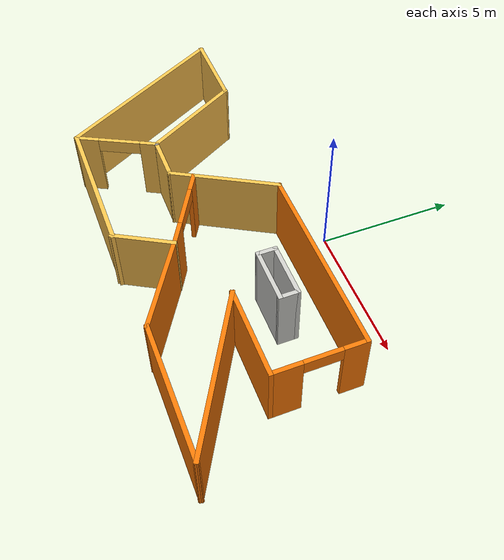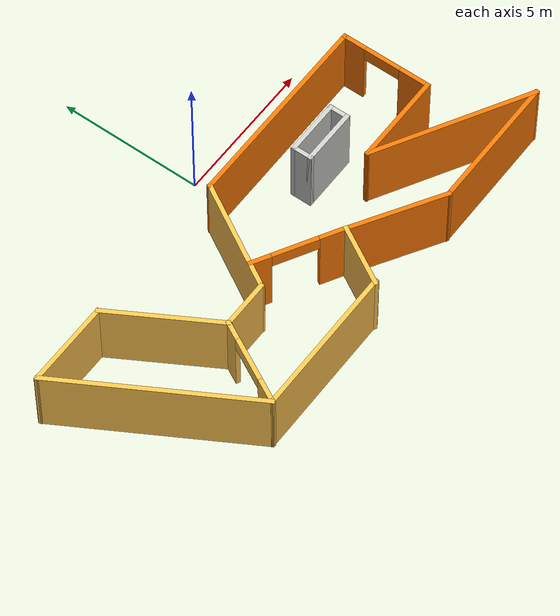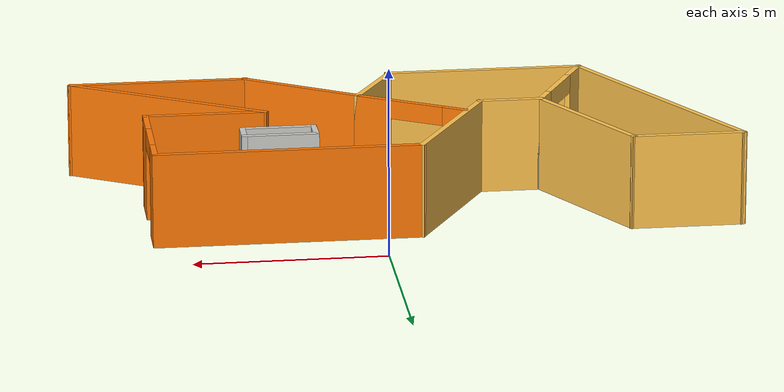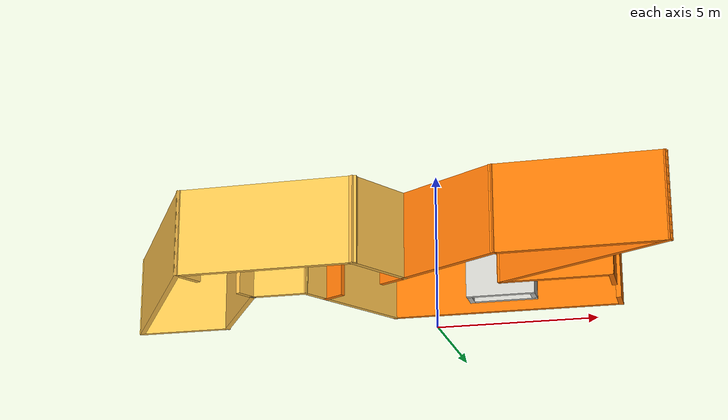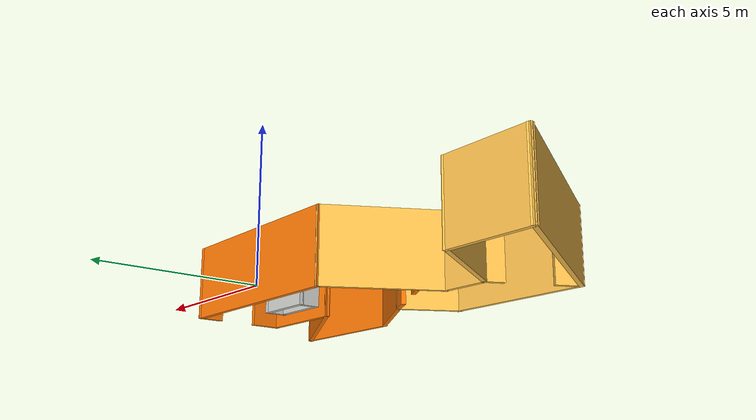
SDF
<?xml version='1.0'?>
<sdf version='1.7'>
  <model name='model'>
    <pose>-0.880063 -3.74089 0 0 -0 0</pose>
    <link name='Wall_1'>
      <collision name='Wall_1_Collision'>
        <geometry>
          <box>
            <size>3 0.15 2.5</size>
          </box>
        </geometry>
        <pose>0 0 1.25 0 -0 0</pose>
      </collision>
      <visual name='Wall_1_Visual'>
        <pose>0 0 1.25 0 -0 0</pose>
        <geometry>
          <box>
            <size>3 0.15 2.5</size>
          </box>
        </geometry>
        <material>
          <script>
            <uri>file://media/materials/scripts/gazebo.material</uri>
            <name>Gazebo/Grey</name>
          </script>
          <ambient>1 0.764706 0.305882 1</ambient>
        </material>
        <meta>
          <layer>0</layer>
        </meta>
      </visual>
      <pose>-7.02494 2.33089 0 0 -0 0</pose>
    </link>
    <link name='Wall_10'>
      <collision name='Wall_10_Collision'>
        <geometry>
          <box>
            <size>3.45374 0.15 2.5</size>
          </box>
        </geometry>
        <pose>0 0 1.25 0 -0 0</pose>
      </collision>
      <visual name='Wall_10_Visual'>
        <pose>0 0 1.25 0 -0 0</pose>
        <geometry>
          <box>
            <size>3.45374 0.15 2.5</size>
          </box>
        </geometry>
        <material>
          <script>
            <uri>file://media/materials/scripts/gazebo.material</uri>
            <name>Gazebo/Grey</name>
          </script>
          <ambient>0.996078 0.47451 0.0196078 1</ambient>
        </material>
        <meta>
          <layer>0</layer>
        </meta>
      </visual>
      <pose>2.44495 -2.70017 0 0 -0 2.58766</pose>
    </link>
    <link name='Wall_11'>
      <collision name='Wall_11_Collision'>
        <geometry>
          <box>
            <size>2.25 0.15 2.5</size>
          </box>
        </geometry>
        <pose>0 0 1.25 0 -0 0</pose>
      </collision>
      <visual name='Wall_11_Visual'>
        <pose>0 0 1.25 0 -0 0</pose>
        <geometry>
          <box>
            <size>2.25 0.15 2.5</size>
          </box>
        </geometry>
        <material>
          <script>
            <uri>file://media/materials/scripts/gazebo.material</uri>
            <name>Gazebo/Grey</name>
          </script>
          <ambient>1 0.764706 0.305882 1</ambient>
        </material>
        <meta>
          <layer>0</layer>
        </meta>
      </visual>
      <pose>0.5151 -2.72911 0 0 -0 -2.0944</pose>
    </link>
    <link name='Wall_2'>
      <collision name='Wall_2_Collision'>
        <geometry>
          <box>
            <size>4 0.15 2.5</size>
          </box>
        </geometry>
        <pose>0 0 1.25 0 -0 0</pose>
      </collision>
      <visual name='Wall_2_Visual'>
        <pose>0 0 1.25 0 -0 0</pose>
        <geometry>
          <box>
            <size>4 0.15 2.5</size>
          </box>
        </geometry>
        <material>
          <script>
            <uri>file://media/materials/scripts/gazebo.material</uri>
            <name>Gazebo/Grey</name>
          </script>
          <ambient>1 0.764706 0.305882 1</ambient>
        </material>
        <meta>
          <layer>0</layer>
        </meta>
      </visual>
      <pose>-4.63744 0.66379 0 0 -0 -1.0472</pose>
    </link>
    <link name='Wall_20'>
      <collision name='Wall_20_Collision'>
        <geometry>
          <box>
            <size>6.98788 0.15 2.5</size>
          </box>
        </geometry>
        <pose>0 0 1.25 0 -0 0</pose>
      </collision>
      <visual name='Wall_20_Visual'>
        <pose>0 0 1.25 0 -0 0</pose>
        <geometry>
          <box>
            <size>6.98788 0.15 2.5</size>
          </box>
        </geometry>
        <material>
          <script>
            <uri>file://media/materials/scripts/gazebo.material</uri>
            <name>Gazebo/Grey</name>
          </script>
          <ambient>1 0.764706 0.305882 1</ambient>
        </material>
        <meta>
          <layer>0</layer>
        </meta>
      </visual>
      <pose>-6.75459 -0.638107 0 0 -0 -1.05196</pose>
    </link>
    <link name='Wall_21'>
      <collision name='Wall_21_Collision'>
        <geometry>
          <box>
            <size>5.25 0.15 2.5</size>
          </box>
        </geometry>
        <pose>0 0 1.25 0 -0 0</pose>
      </collision>
      <visual name='Wall_21_Visual'>
        <pose>0 0 1.25 0 -0 0</pose>
        <geometry>
          <box>
            <size>5.25 0.15 2.5</size>
          </box>
        </geometry>
        <material>
          <script>
            <uri>file://media/materials/scripts/gazebo.material</uri>
            <name>Gazebo/Grey</name>
          </script>
          <ambient>1 0.764706 0.305882 1</ambient>
        </material>
        <meta>
          <layer>0</layer>
        </meta>
      </visual>
      <pose>-2.49781 -3.6071 0 0 -0 0</pose>
    </link>
    <link name='Wall_23'>
      <collision name='Wall_23_Collision'>
        <geometry>
          <box>
            <size>2 0.15 2.5</size>
          </box>
        </geometry>
        <pose>0 0 1.25 0 -0 0</pose>
      </collision>
      <visual name='Wall_23_Visual'>
        <pose>0 0 1.25 0 -0 0</pose>
        <geometry>
          <box>
            <size>2 0.15 2.5</size>
          </box>
        </geometry>
        <material>
          <script>
            <uri>file://media/materials/scripts/gazebo.material</uri>
            <name>Gazebo/CeilingTiled</name>
          </script>
          <ambient>0.435294 0.796078 0.67451 1</ambient>
        </material>
        <meta>
          <layer>0</layer>
        </meta>
      </visual>
      <pose>3.37989 1.12451 0 0 -0 3.14159</pose>
    </link>
    <link name='Wall_24'>
      <collision name='Wall_24_Collision'>
        <geometry>
          <box>
            <size>0.75 0.15 2.5</size>
          </box>
        </geometry>
        <pose>0 0 1.25 0 -0 0</pose>
      </collision>
      <visual name='Wall_24_Visual'>
        <pose>0 0 1.25 0 -0 0</pose>
        <geometry>
          <box>
            <size>0.75 0.15 2.5</size>
          </box>
        </geometry>
        <material>
          <script>
            <uri>file://media/materials/scripts/gazebo.material</uri>
            <name>Gazebo/CeilingTiled</name>
          </script>
          <ambient>0.435294 0.796078 0.67451 1</ambient>
        </material>
        <meta>
          <layer>0</layer>
        </meta>
      </visual>
      <pose>2.45489 0.824511 0 0 -0 -1.5708</pose>
    </link>
    <link name='Wall_25'>
      <collision name='Wall_25_Collision'>
        <geometry>
          <box>
            <size>2 0.15 2.5</size>
          </box>
        </geometry>
        <pose>0 0 1.25 0 -0 0</pose>
      </collision>
      <visual name='Wall_25_Visual'>
        <pose>0 0 1.25 0 -0 0</pose>
        <geometry>
          <box>
            <size>2 0.15 2.5</size>
          </box>
        </geometry>
        <material>
          <script>
            <uri>file://media/materials/scripts/gazebo.material</uri>
            <name>Gazebo/CeilingTiled</name>
          </script>
          <ambient>0.435294 0.796078 0.67451 1</ambient>
        </material>
        <meta>
          <layer>0</layer>
        </meta>
      </visual>
      <pose>3.37989 0.524511 0 0 -0 0</pose>
    </link>
    <link name='Wall_26'>
      <collision name='Wall_26_Collision'>
        <geometry>
          <box>
            <size>0.75 0.15 2.5</size>
          </box>
        </geometry>
        <pose>0 0 1.25 0 -0 0</pose>
      </collision>
      <visual name='Wall_26_Visual'>
        <pose>0 0 1.25 0 -0 0</pose>
        <geometry>
          <box>
            <size>0.75 0.15 2.5</size>
          </box>
        </geometry>
        <material>
          <script>
            <uri>file://media/materials/scripts/gazebo.material</uri>
            <name>Gazebo/CeilingTiled</name>
          </script>
          <ambient>0.435294 0.796078 0.67451 1</ambient>
        </material>
        <meta>
          <layer>0</layer>
        </meta>
      </visual>
      <pose>4.30489 0.824511 0 0 -0 1.5708</pose>
    </link>
    <link name='Wall_28'>
      <collision name='Wall_28_Collision'>
        <geometry>
          <box>
            <size>0.15 0.15 2.5</size>
          </box>
        </geometry>
        <pose>0 0 1.25 0 -0 0</pose>
      </collision>
      <visual name='Wall_28_Visual'>
        <pose>0 0 1.25 0 -0 0</pose>
        <geometry>
          <box>
            <size>0.15 0.15 2.5</size>
          </box>
        </geometry>
        <material>
          <script>
            <uri>file://media/materials/scripts/gazebo.material</uri>
            <name>Gazebo/Grey</name>
          </script>
          <ambient>1 1 1 1</ambient>
        </material>
        <meta>
          <layer>0</layer>
        </meta>
      </visual>
      <pose>-3.67494 -1.00331 0 0 -0 0</pose>
    </link>
    <link name='Wall_29'>
      <pose>-4.36137 -2.30521 0 0 -0 -2.05601</pose>
      <visual name='Wall_29_Visual_0'>
        <pose>-1.20446 0 1.25 0 -0 0</pose>
        <geometry>
          <box>
            <size>0.684636 0.15 2.5</size>
          </box>
        </geometry>
        <material>
          <script>
            <uri>file://media/materials/scripts/gazebo.material</uri>
            <name>Gazebo/Grey</name>
          </script>
          <ambient>1 0.764706 0.305882 1</ambient>
        </material>
        <meta>
          <layer>0</layer>
        </meta>
      </visual>
      <collision name='Wall_29_Collision_0'>
        <geometry>
          <box>
            <size>0.684636 0.15 2.5</size>
          </box>
        </geometry>
        <pose>-1.20446 0 1.25 0 -0 0</pose>
      </collision>
      <visual name='Wall_29_Visual_1'>
        <pose>1.09942 0 1.25 0 -0 0</pose>
        <geometry>
          <box>
            <size>0.894721 0.15 2.5</size>
          </box>
        </geometry>
        <material>
          <script>
            <uri>file://media/materials/scripts/gazebo.material</uri>
            <name>Gazebo/Grey</name>
          </script>
          <ambient>1 0.764706 0.305882 1</ambient>
        </material>
        <meta>
          <layer>0</layer>
        </meta>
      </visual>
      <collision name='Wall_29_Collision_1'>
        <geometry>
          <box>
            <size>0.894721 0.15 2.5</size>
          </box>
        </geometry>
        <pose>1.09942 0 1.25 0 -0 0</pose>
      </collision>
      <visual name='Wall_29_Visual_2'>
        <pose>-0.105042 0 2.25 0 -0 0</pose>
        <geometry>
          <box>
            <size>1.5142 0.15 0.5</size>
          </box>
        </geometry>
        <material>
          <script>
            <uri>file://media/materials/scripts/gazebo.material</uri>
            <name>Gazebo/Grey</name>
          </script>
          <ambient>1 0.764706 0.305882 1</ambient>
        </material>
        <meta>
          <layer>0</layer>
        </meta>
      </visual>
      <collision name='Wall_29_Collision_2'>
        <geometry>
          <box>
            <size>1.5142 0.15 0.5</size>
          </box>
        </geometry>
        <pose>-0.105042 0 2.25 0 -0 0</pose>
      </collision>
    </link>
    <link name='Wall_3'>
      <collision name='Wall_3_Collision'>
        <geometry>
          <box>
            <size>1.75 0.15 2.5</size>
          </box>
        </geometry>
        <pose>0 0 1.25 0 -0 0</pose>
      </collision>
      <visual name='Wall_3_Visual'>
        <pose>0 0 1.25 0 -0 0</pose>
        <geometry>
          <box>
            <size>1.75 0.15 2.5</size>
          </box>
        </geometry>
        <material>
          <script>
            <uri>file://media/materials/scripts/gazebo.material</uri>
            <name>Gazebo/Grey</name>
          </script>
          <ambient>1 0.764706 0.305882 1</ambient>
        </material>
        <meta>
          <layer>0</layer>
        </meta>
      </visual>
      <pose>-2.87494 -1.00331 0 0 -0 0</pose>
    </link>
    <link name='Wall_32'>
      <pose>-0.302239 -1.04478 0 0 -0 2.61799</pose>
      <visual name='Wall_32_Visual_0'>
        <pose>-1.15002 0 1.25 0 -0 0</pose>
        <geometry>
          <box>
            <size>0.949952 0.15 2.5</size>
          </box>
        </geometry>
        <material>
          <script>
            <uri>file://media/materials/scripts/gazebo.material</uri>
            <name>Gazebo/Grey</name>
          </script>
          <ambient>0.996078 0.47451 0.0196078 1</ambient>
        </material>
        <meta>
          <layer>0</layer>
        </meta>
      </visual>
      <collision name='Wall_32_Collision_0'>
        <geometry>
          <box>
            <size>0.949952 0.15 2.5</size>
          </box>
        </geometry>
        <pose>-1.15002 0 1.25 0 -0 0</pose>
      </collision>
      <visual name='Wall_32_Visual_1'>
        <pose>1.24923 0 1.25 0 -0 0</pose>
        <geometry>
          <box>
            <size>0.751532 0.15 2.5</size>
          </box>
        </geometry>
        <material>
          <script>
            <uri>file://media/materials/scripts/gazebo.material</uri>
            <name>Gazebo/Grey</name>
          </script>
          <ambient>0.996078 0.47451 0.0196078 1</ambient>
        </material>
        <meta>
          <layer>0</layer>
        </meta>
      </visual>
      <collision name='Wall_32_Collision_1'>
        <geometry>
          <box>
            <size>0.751532 0.15 2.5</size>
          </box>
        </geometry>
        <pose>1.24923 0 1.25 0 -0 0</pose>
      </collision>
      <visual name='Wall_32_Visual_2'>
        <pose>0.09921 0 2.25 0 -0 0</pose>
        <geometry>
          <box>
            <size>1.54852 0.15 0.5</size>
          </box>
        </geometry>
        <material>
          <script>
            <uri>file://media/materials/scripts/gazebo.material</uri>
            <name>Gazebo/Grey</name>
          </script>
          <ambient>0.996078 0.47451 0.0196078 1</ambient>
        </material>
        <meta>
          <layer>0</layer>
        </meta>
      </visual>
      <collision name='Wall_32_Collision_2'>
        <geometry>
          <box>
            <size>1.54852 0.15 0.5</size>
          </box>
        </geometry>
        <pose>0.09921 0 2.25 0 -0 0</pose>
      </collision>
    </link>
    <link name='Wall_4'>
      <collision name='Wall_4_Collision'>
        <geometry>
          <box>
            <size>4 0.15 2.5</size>
          </box>
        </geometry>
        <pose>0 0 1.25 0 -0 0</pose>
      </collision>
      <visual name='Wall_4_Visual'>
        <pose>0 0 1.25 0 -0 0</pose>
        <geometry>
          <box>
            <size>4 0.15 2.5</size>
          </box>
        </geometry>
        <material>
          <script>
            <uri>file://media/materials/scripts/gazebo.material</uri>
            <name>Gazebo/Grey</name>
          </script>
          <ambient>1 0.764706 0.305882 1</ambient>
        </material>
        <meta>
          <layer>0</layer>
        </meta>
      </visual>
      <pose>-1.11244 0.66379 0 0 -0 1.0472</pose>
    </link>
    <link name='Wall_5'>
      <collision name='Wall_5_Collision'>
        <geometry>
          <box>
            <size>7 0.15 2.5</size>
          </box>
        </geometry>
        <pose>0 0 1.25 0 -0 0</pose>
      </collision>
      <visual name='Wall_5_Visual'>
        <pose>0 0 1.25 0 -0 0</pose>
        <geometry>
          <box>
            <size>7 0.15 2.5</size>
          </box>
        </geometry>
        <material>
          <script>
            <uri>file://media/materials/scripts/gazebo.material</uri>
            <name>Gazebo/Grey</name>
          </script>
          <ambient>0.996078 0.47451 0.0196078 1</ambient>
        </material>
        <meta>
          <layer>0</layer>
        </meta>
      </visual>
      <pose>3.27506 2.33089 0 0 -0 0</pose>
    </link>
    <link name='Wall_6'>
      <pose>6.70006 0.780889 0 0 -0 -1.5708</pose>
      <visual name='Wall_6_Visual_0'>
        <pose>-1.19377 0 1.25 0 -0 0</pose>
        <geometry>
          <box>
            <size>0.862464 0.15 2.5</size>
          </box>
        </geometry>
        <material>
          <script>
            <uri>file://media/materials/scripts/gazebo.material</uri>
            <name>Gazebo/Grey</name>
          </script>
          <ambient>0.996078 0.47451 0.0196078 1</ambient>
        </material>
        <meta>
          <layer>0</layer>
        </meta>
      </visual>
      <collision name='Wall_6_Collision_0'>
        <geometry>
          <box>
            <size>0.862464 0.15 2.5</size>
          </box>
        </geometry>
        <pose>-1.19377 0 1.25 0 -0 0</pose>
      </collision>
      <visual name='Wall_6_Visual_1'>
        <pose>1.07673 0 1.25 0 -0 0</pose>
        <geometry>
          <box>
            <size>1.09654 0.15 2.5</size>
          </box>
        </geometry>
        <material>
          <script>
            <uri>file://media/materials/scripts/gazebo.material</uri>
            <name>Gazebo/Grey</name>
          </script>
          <ambient>0.996078 0.47451 0.0196078 1</ambient>
        </material>
        <meta>
          <layer>0</layer>
        </meta>
      </visual>
      <collision name='Wall_6_Collision_1'>
        <geometry>
          <box>
            <size>1.09654 0.15 2.5</size>
          </box>
        </geometry>
        <pose>1.07673 0 1.25 0 -0 0</pose>
      </collision>
      <visual name='Wall_6_Visual_2'>
        <pose>-0.117036 0 2.25 0 -0 0</pose>
        <geometry>
          <box>
            <size>1.291 0.15 0.5</size>
          </box>
        </geometry>
        <material>
          <script>
            <uri>file://media/materials/scripts/gazebo.material</uri>
            <name>Gazebo/Grey</name>
          </script>
          <ambient>0.996078 0.47451 0.0196078 1</ambient>
        </material>
        <meta>
          <layer>0</layer>
        </meta>
      </visual>
      <collision name='Wall_6_Collision_2'>
        <geometry>
          <box>
            <size>1.291 0.15 0.5</size>
          </box>
        </geometry>
        <pose>-0.117036 0 2.25 0 -0 0</pose>
      </collision>
    </link>
    <link name='Wall_7'>
      <collision name='Wall_7_Collision'>
        <geometry>
          <box>
            <size>3.25 0.15 2.5</size>
          </box>
        </geometry>
        <pose>0 0 1.25 0 -0 0</pose>
      </collision>
      <visual name='Wall_7_Visual'>
        <pose>0 0 1.25 0 -0 0</pose>
        <geometry>
          <box>
            <size>3.25 0.15 2.5</size>
          </box>
        </geometry>
        <material>
          <script>
            <uri>file://media/materials/scripts/gazebo.material</uri>
            <name>Gazebo/Grey</name>
          </script>
          <ambient>0.996078 0.47451 0.0196078 1</ambient>
        </material>
        <meta>
          <layer>0</layer>
        </meta>
      </visual>
      <pose>5.15006 -0.769112 0 0 -0 3.14159</pose>
    </link>
    <link name='Wall_8'>
      <collision name='Wall_8_Collision'>
        <geometry>
          <box>
            <size>5.75 0.15 2.5</size>
          </box>
        </geometry>
        <pose>0 0 1.25 0 -0 0</pose>
      </collision>
      <visual name='Wall_8_Visual'>
        <pose>0 0 1.25 0 -0 0</pose>
        <geometry>
          <box>
            <size>5.75 0.15 2.5</size>
          </box>
        </geometry>
        <material>
          <script>
            <uri>file://media/materials/scripts/gazebo.material</uri>
            <name>Gazebo/Grey</name>
          </script>
          <ambient>0.996078 0.47451 0.0196078 1</ambient>
        </material>
        <meta>
          <layer>0</layer>
        </meta>
      </visual>
      <pose>6.02493 -2.16911 0 0 -0 -0.523599</pose>
    </link>
    <link name='Wall_9'>
      <collision name='Wall_9_Collision'>
        <geometry>
          <box>
            <size>4.75 0.15 2.5</size>
          </box>
        </geometry>
        <pose>0 0 1.25 0 -0 0</pose>
      </collision>
      <visual name='Wall_9_Visual'>
        <pose>0 0 1.25 0 -0 0</pose>
        <geometry>
          <box>
            <size>4.75 0.15 2.5</size>
          </box>
        </geometry>
        <material>
          <script>
            <uri>file://media/materials/scripts/gazebo.material</uri>
            <name>Gazebo/Grey</name>
          </script>
          <ambient>0.996078 0.47451 0.0196078 1</ambient>
        </material>
        <meta>
          <layer>0</layer>
        </meta>
      </visual>
      <pose>6.1498 -3.56911 0 0 -0 3.14159</pose>
    </link>
    <static>1</static>
  </model>
</sdf>
